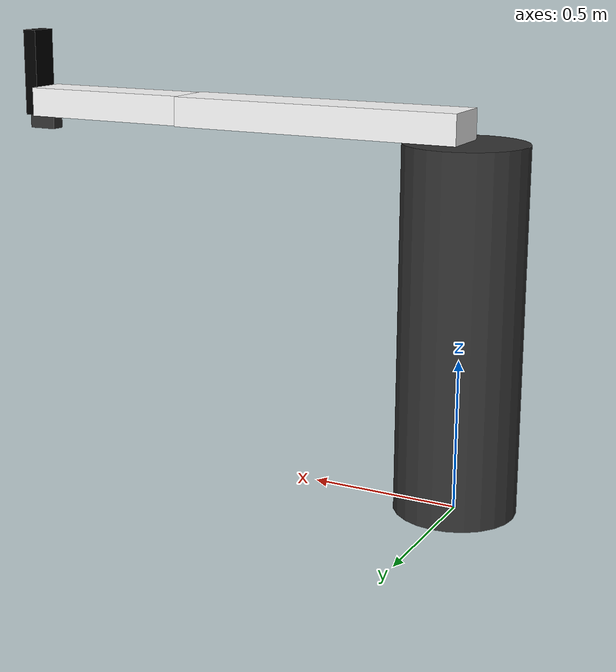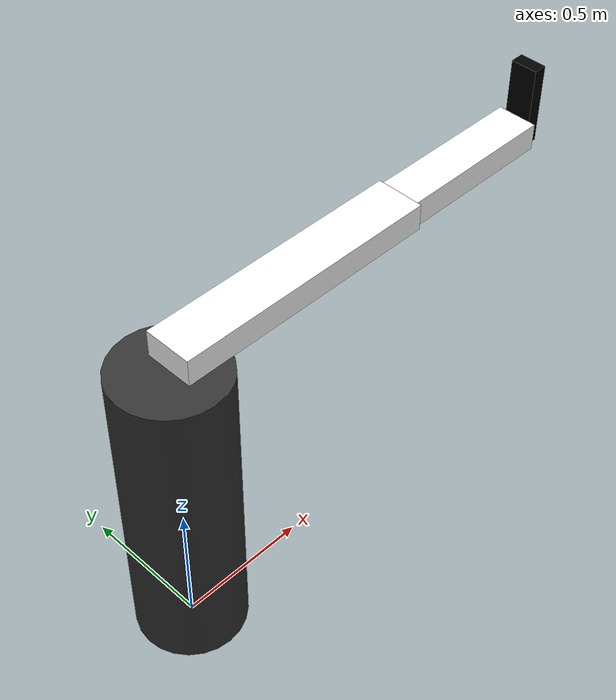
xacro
<?xml version="1.0" ?>
<robot xmlns:xacro="http://ros.org/wiki/xacro" name="r2d2">

<xacro:property name="base_width" value="0.2" />
<xacro:property name="base_height" value="1.2" />

<material name="white">
    <color rgba="1 1 1 1"/>
</material>

<material name="grey">
    <color rgba=".2 .2 .2 1" />
</material>

<material name="black">
    <color rgba="0 0 0 1"/>
</material>

<link name="base">

  <visual>
  <origin rpy="0 0 0" xyz="0 0 .6" />
    <geometry>
      <cylinder radius="0.2" length="1.2" />
    </geometry>

    <material name="grey"/>

  </visual>

</link>

<link name="arm1">

  <visual>
    <origin rpy="0 1.5708 0" xyz="0.5 0 0.05" />
    <geometry>
      <box size=".1 .18 1" />
    </geometry>

    <material name="white"/>
  </visual>

</link>

<joint name="arm1connect" type="continuous">
  <axis xyz="0 0 1"/>
  <origin xyz="0 0 1.2" />
  <parent link="base"/>
  <child link="arm1"/>

</joint>

<!-- arm2 -->
<link name="arm2">

  <visual>
    <origin rpy="0 1.5708 0" xyz="0.3 0 0.05" />
    <geometry>
      <box size=".1 .15 0.6" />
    </geometry>

    <material name="white"/>
  </visual>

</link>

<joint name="arm2connect" type="continuous">

  <axis xyz="0 0 1"/>
  <origin xyz="1 0 0" />
  <parent link="arm1"/>
  <child link="arm2"/>

</joint>

<link name="wrist">

  <visual>
    <origin rpy="0 0 0" xyz="-0.025 0 -0.15" />
    <geometry>
      <box size=".05 .1 0.3" />
    </geometry>

    <material name="black"/>
  </visual>

</link>

<joint name="wristconnect" type="prismatic">
  <limit effort="1000.0" lower="-0.2" upper="0" velocity="0.5"/>
  <origin rpy="0 3.14 0" xyz="0.6 0 0" />
  <parent link="arm2"/>
  <child link="wrist"/>

</joint>

<link name="gripper">

  <visual>
    <origin rpy="0 0 0" xyz="0 0 0.025" />
    <geometry>
      <box size=".1 .05 .05" />
    </geometry>

    <material name="grey"/>

  </visual>

</link>

<!-- co to? -->
<joint name="end"  type="fixed">

  <origin rpy="0 0 0" xyz="0 0 0" />
  <parent link="wrist"/>
  <child link="gripper"/>

</joint>

</robot>
